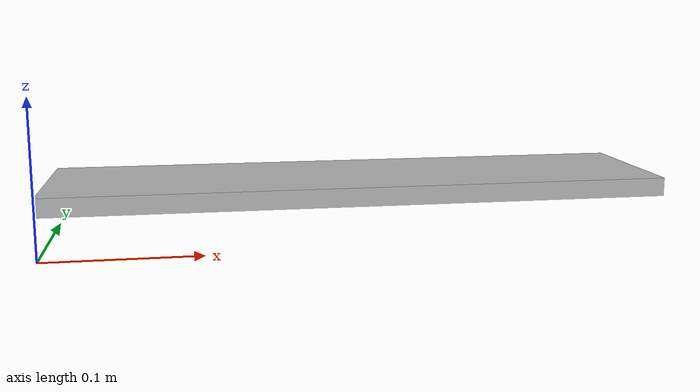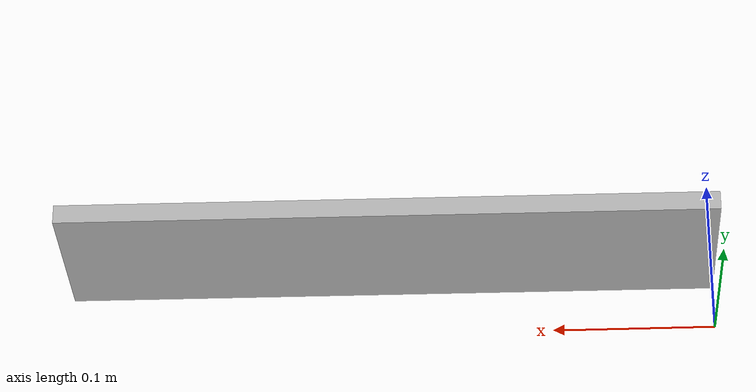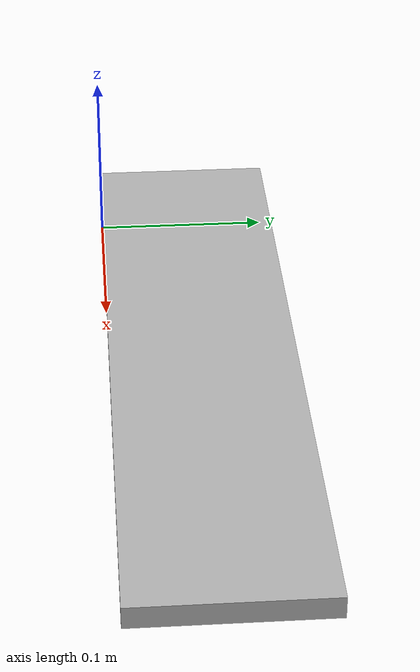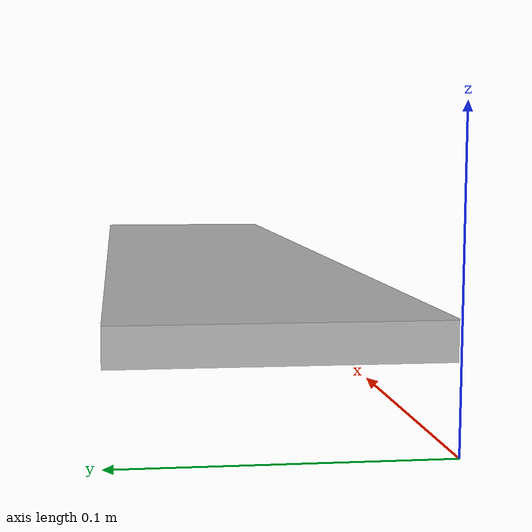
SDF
<?xml version='1.0'?>
<sdf version='1.0'>
  <model name="flat_piece">
	<static>true</static>
	<link name='flat_piece'>
            <pose>0 0 0.0275 1.571 0 0</pose>

            <collision name='collision'>
              <geometry>
                <mesh><uri>model://flat_piece/mesh/flat_piece.stl</uri></mesh>
              </geometry>
		          <surface>
                <friction>
                  <ode>
                    <mu>2</mu>
                    <mu2>2</mu2>
                  </ode>
                </friction>
              </surface>
            </collision>
            <inertial>
              <mass>5</mass>
              <inertia>
                <ixx>1.0</ixx>
                <ixy>0.0</ixy>
                <ixz>0.0</ixz>
                <iyy>1.0</iyy>
                <iyz>0.0</iyz>
                <izz>1.0</izz>
              </inertia>
            </inertial>

            <visual name='visual'>
              <geometry>
                <mesh><uri>model://flat_piece/mesh/flat_piece.stl</uri></mesh>
              </geometry>
            </visual>
          </link>
  </model>
</sdf>
